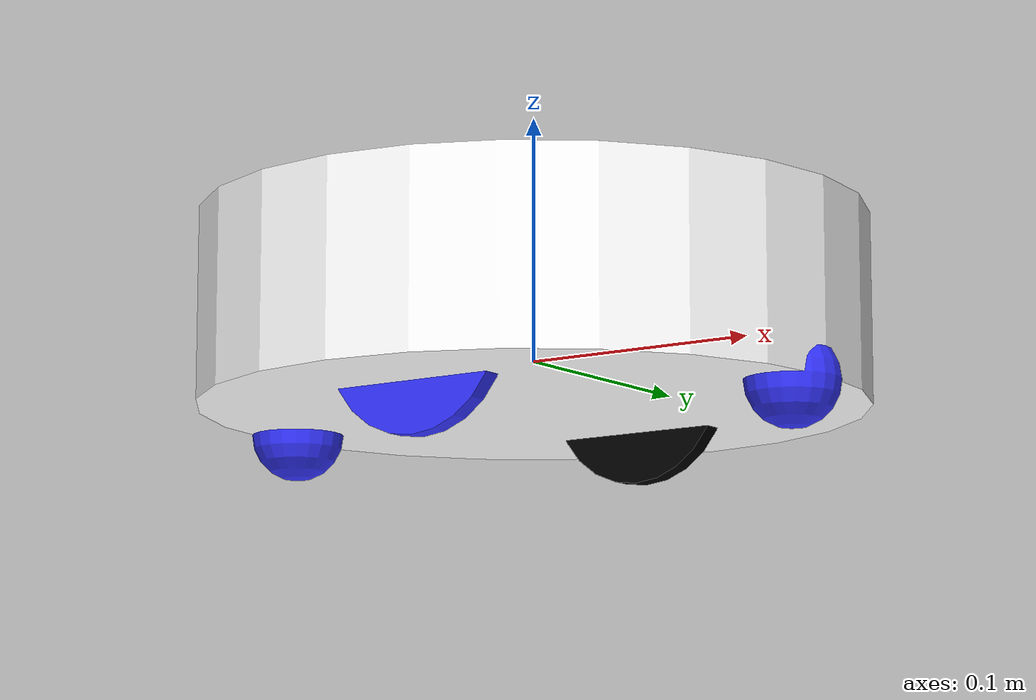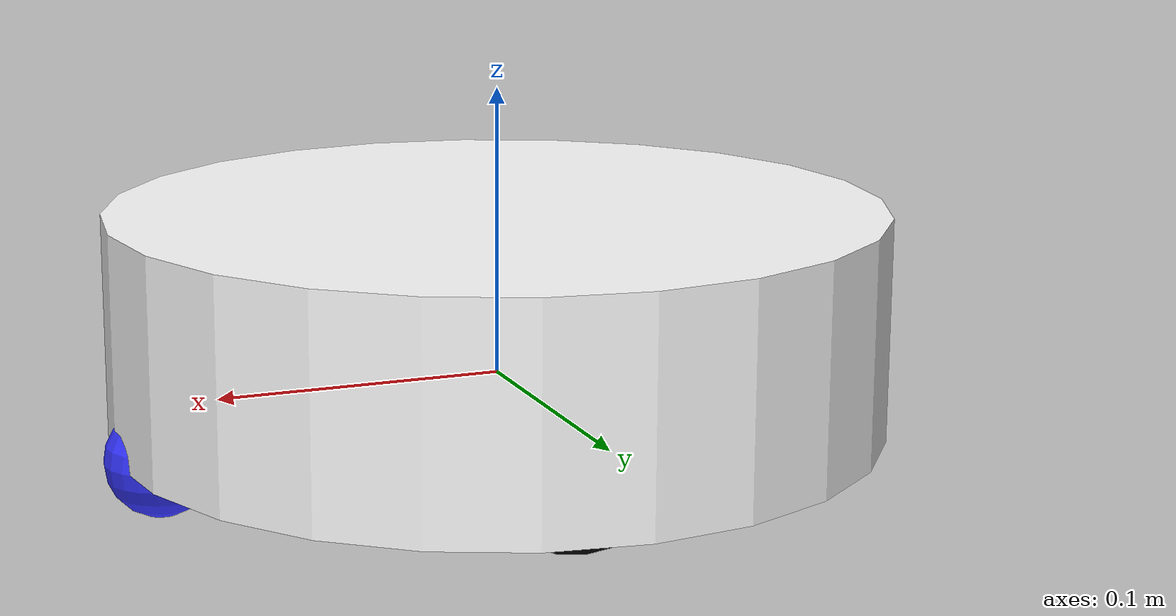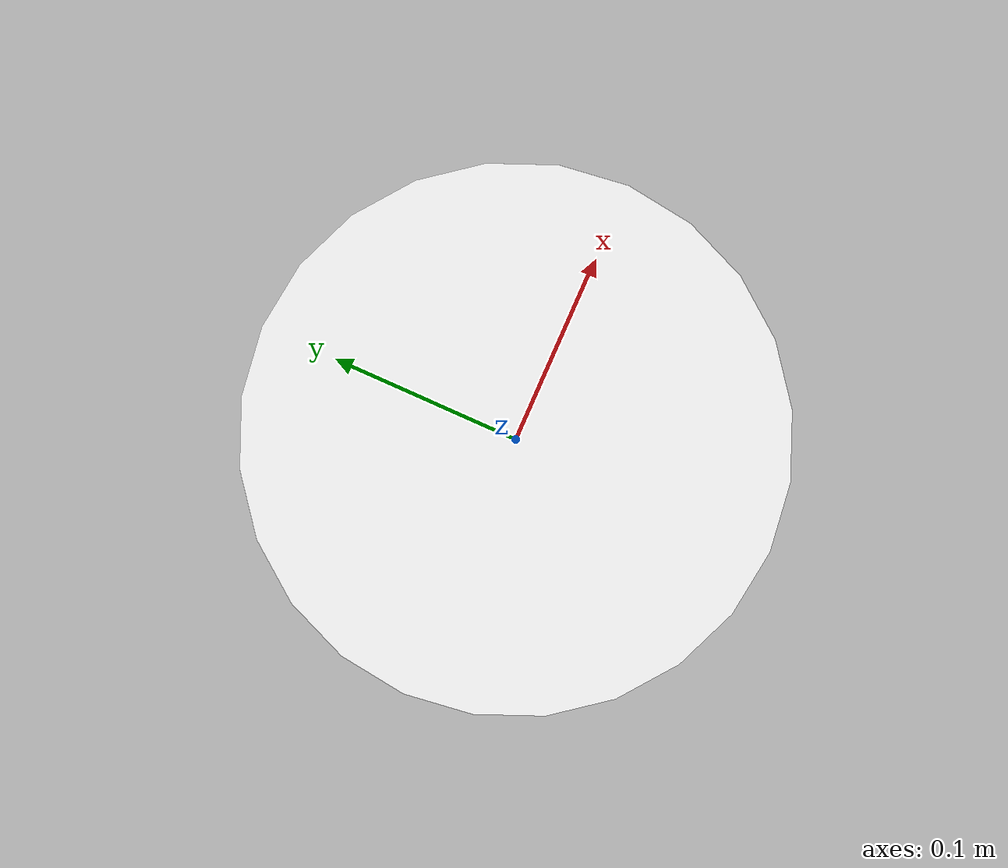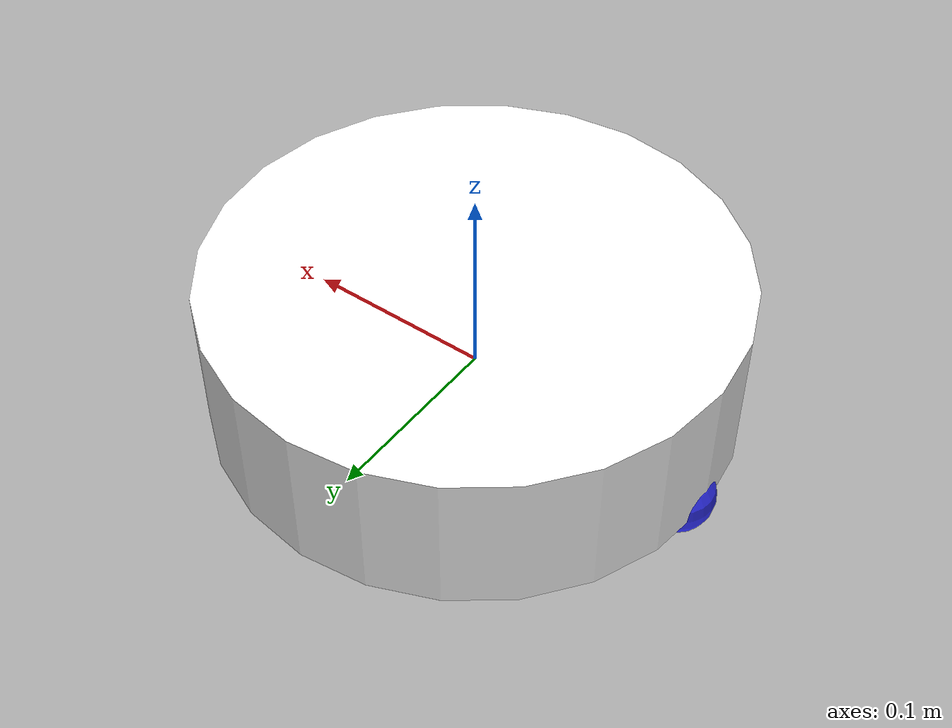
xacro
<?xml version="1.0"?>
<robot xmlns:xacro="http://www.ros.org/wiki/xacro"  name="robot">

<xacro:include filename="inertial_macros.xacro"/>

    <material name="white">
        <color rgba="1 1 1 1"/>
    </material>

    <material name="black">
        <color rgba="0 0 0 1"/>
    </material>

    <material name="orange">
        <color rgba="1 0.3 0.1 1"/>
    </material>

    <material name="blue">
        <color rgba="0.2 0.2 1 1"/>
    </material>

    <material name="green">
        <color rgba="0 1 0 1"/>
    </material>

    <material name="red">
        <color rgba="0.8 0 0 1"/>
    </material>

    <material name="grey">
        <color rgba="0.2 0.2 0.2 1"/>
    </material>

<!-- BASE LINK -->
  <link name="base_link">
  </link>

  <link name="base_footprint">
  </link>

  <joint name="base_footprint_joint" type="fixed">
    <parent link="base_link"/>
    <child link="base_footprint"/>
    <origin xyz="0.0 0.0 0.0" rpy="0 0 0"/>
</joint>

<!-- CHASSIS LINK -->

  <link name="chassis">
      <visual>
        <geometry>
          <cylinder radius="0.135" length="0.078"/>
        </geometry>
        <material name="white"/>
      </visual>

      <collision>
        <geometry>
          <cylinder radius="0.135" length="0.078"/>
        </geometry>
      </collision>
      <xacro:inertial_cylinder mass="0.4" length="0.078" radius="0.135">
        <origin xyz="0 0.018 0" rpy="0 0 0"/>
      </xacro:inertial_cylinder>
  </link>

  <joint name="chassis_joint" type="fixed">
    <parent link="base_link"/>
    <child link="chassis"/>
    <origin xyz="0.0 0 0.02" rpy="0 0 0"/>
  </joint>

<!-- LEFT WHEEL LINK -->

  <link name="left_wheel">
      <visual>
        <geometry>
          <cylinder radius="0.04" length="0.008"/>
        </geometry>
        <material name="black"/>
      </visual>

      <collision>
        <geometry>
          <cylinder radius="0.04" length="0.008"/>
        </geometry>
      </collision>
      <xacro:inertial_cylinder mass="0.1" length="0.008" radius="0.04">
        <origin xyz="0 0 0" rpy="0 0 0"/>
      </xacro:inertial_cylinder>
  </link>

  <gazebo reference="left_wheel">
    <material>Gazebo/Black</material>
  </gazebo>

  <joint name="left_wheel_joint" type="continuous">
    <parent link="base_link"/>
    <child link="left_wheel"/>
    <origin xyz="0.0 0.078 0" rpy="-${pi/2} 0 0"/>
    <axis xyz="0 0 1"/>
</joint>
<!-- RIGHT WHEEL LINK -->

  <link name="right_wheel">
      <visual>

        <geometry>
          <cylinder radius="0.04" length="0.008"/>
        </geometry>
        <material name="blue"/>
      </visual>
      <collision>

        <geometry>
          <cylinder radius="0.04" length="0.008"/>
        </geometry>

      </collision>
      <xacro:inertial_cylinder mass="0.05" length="0.008" radius="0.04">
        <origin xyz="0 0 0" rpy="0 0 0"/>
      </xacro:inertial_cylinder>
  </link>
  <gazebo reference="right_wheel">
    <material>Gazebo/Black</material>

  </gazebo>
  <joint name="right_wheel_joint" type="continuous">
    <parent link="base_link"/>
    <child link="right_wheel"/>
    <origin xyz="0.0 -0.078 0.0" rpy="${pi/2} 0 0"/>
    <axis xyz="0 0 -1"/>
</joint>

<!-- CASTER WHEEL LINK-->

<link name="caster_wheel_front">

 <visual>

        <geometry>
          <sphere radius="0.019" />
        </geometry>
        <material name="blue"/>
      </visual>
      <collision>

        <geometry>
          <sphere radius="0.019" />
        </geometry>

      </collision>
      <xacro:inertial_sphere mass="0.1" radius="0.019">
        <origin xyz="0 0 0" rpy="0 0 0"/>
      </xacro:inertial_sphere>

</link>

<joint name="caster_wheel_front_joint" type="fixed">
  <parent link="chassis"/>
  <child link="caster_wheel_front"/>
  <origin xyz="0.12 0 -0.039"/>
</joint>

<gazebo reference="caster_wheel_front">
  <material>Gazebo/Black</material>
  <mu1 value="0.001"/>
  <mu2 value="0.001"/>
</gazebo>

<link name="caster_wheel_rear">

 <visual>

        <geometry>
          <sphere radius="0.019" />
        </geometry>
        <material name="blue"/>
      </visual>
      <collision>

        <geometry>
          <sphere radius="0.019" />
        </geometry>

      </collision>
      <xacro:inertial_sphere mass="0.1" radius="0.019">
        <origin xyz="0 0 0" rpy="0 0 0"/>
      </xacro:inertial_sphere>

</link>

<joint name="caster_wheel_rear_joint" type="fixed">
  <parent link="chassis"/>
  <child link="caster_wheel_rear"/>
  <origin xyz="-0.12 0 -0.039"/>
</joint>

<gazebo reference="caster_wheel_rear">
  <material>Gazebo/Black</material>
  <mu1 value="0.001"/>
  <mu2 value="0.001"/>
</gazebo>

</robot>

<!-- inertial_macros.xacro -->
<robot xmlns:xacro="http://www.ros.org/wiki/xacro" >

    <!-- Specify some standard inertial calculations https://en.wikipedia.org/wiki/List_of_moments_of_inertia -->
    <!-- These make use of xacro's mathematical functionality -->

    <xacro:macro name="inertial_sphere" params="mass radius *origin">
        <inertial>
            <xacro:insert_block name="origin"/>
            <mass value="${mass}" />
            <inertia ixx="${(2/5) * mass * (radius*radius)}" ixy="0.0" ixz="0.0"
                    iyy="${(2/5) * mass * (radius*radius)}" iyz="0.0"
                    izz="${(2/5) * mass * (radius*radius)}" />
        </inertial>
    </xacro:macro>

    <xacro:macro name="inertial_box" params="mass x y z *origin">
        <inertial>
            <xacro:insert_block name="origin"/>
            <mass value="${mass}" />
            <inertia ixx="${(1/12) * mass * (y*y+z*z)}" ixy="0.0" ixz="0.0"
                    iyy="${(1/12) * mass * (x*x+z*z)}" iyz="0.0"
                    izz="${(1/12) * mass * (x*x+y*y)}" />
        </inertial>
    </xacro:macro>

    <xacro:macro name="inertial_cylinder" params="mass length radius *origin">
        <inertial>
            <xacro:insert_block name="origin"/>
            <mass value="${mass}" />
            <inertia ixx="${(1/12) * mass * (3*radius*radius + length*length)}" ixy="0.0" ixz="0.0"
                    iyy="${(1/12) * mass * (3*radius*radius + length*length)}" iyz="0.0"
                    izz="${(1/2) * mass * (radius*radius)}" />
        </inertial>
    </xacro:macro>

</robot>
